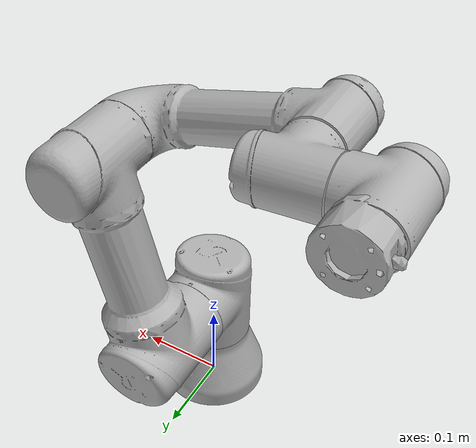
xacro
<?xml version="1.0"?>
<robot xmlns:xacro="http://wiki.ros.org/xacro"
       name="ur3" >

  <xacro:arg name="transmission_hw_interface" default="hardware_interface/PositionJointInterface"/>

  <!-- common stuff -->
  <xacro:include filename="$(find ur_description)/urdf/common.gazebo.xacro" />

  <!-- ur3 -->
  <xacro:include filename="$(find ur_description)/urdf/ur3.urdf.xacro" />

  <!-- arm -->
  <xacro:ur3_robot prefix="" joint_limited="true"
    shoulder_pan_lower_limit="${-pi*140/180}" shoulder_pan_upper_limit="${pi*20/180}"
    shoulder_lift_lower_limit="${-pi*120/180}" shoulder_lift_upper_limit="${-pi*30/180}"
    elbow_joint_lower_limit="${-pi*140/180}" elbow_joint_upper_limit="${-pi*40/180}"
    wrist_1_lower_limit="${-pi*150/180}" wrist_1_upper_limit="${-pi*50/180}"
    wrist_2_lower_limit="${-pi}" wrist_2_upper_limit="${pi}"
    wrist_3_lower_limit="${-2*pi}" wrist_3_upper_limit="${2*pi}"
    transmission_hw_interface="$(arg transmission_hw_interface)"
  />

  <link name="world" />

  <joint name="world_joint" type="fixed">
    <parent link="world" />
    <child link = "base_link" />
    <origin xyz="0.0 0.0 0.0" rpy="0.0 0.0 0.0" />
  </joint>

</robot>

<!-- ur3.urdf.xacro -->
<robot xmlns:xacro="http://wiki.ros.org/xacro"
       name="ur3">
<!--
  Author: Felix Messmer
-->

  <xacro:include filename="$(find ur_description)/urdf/ur.transmission.xacro" />
  <xacro:include filename="$(find ur_description)/urdf/ur.gazebo.xacro" />

   <xacro:macro name="cylinder_inertial" params="radius length mass *origin">
    <inertial>
      <mass value="${mass}" />
      <xacro:insert_block name="origin" />
      <inertia ixx="${0.0833333 * mass * (3 * radius * radius + length * length)}" ixy="0.0" ixz="0.0"
        iyy="${0.0833333 * mass * (3 * radius * radius + length * length)}" iyz="0.0"
        izz="${0.5 * mass * radius * radius}" />
    </inertial>
  </xacro:macro>

  <xacro:macro name="ur3_robot" params="prefix joint_limited

    shoulder_pan_lower_limit:=${-2*pi}    shoulder_pan_upper_limit:=${60/180*pi}
    shoulder_lift_lower_limit:=${-160/180*pi}    shoulder_lift_upper_limit:=${-10/180*pi}
    elbow_joint_lower_limit:=${-180/180*pi}    elbow_joint_upper_limit:=${50/180*pi}
    wrist_1_lower_limit:=${-2*pi}    wrist_1_upper_limit:=${2*pi}
    wrist_2_lower_limit:=${-2*pi}    wrist_2_upper_limit:=${2*pi}
    wrist_3_lower_limit:=${-3*pi}    wrist_3_upper_limit:=${3*pi}

    transmission_hw_interface:=hardware_interface/PositionJointInterface
    safety_limits:=false safety_pos_margin:=0.15
    safety_k_position:=20">

    <!-- Inertia parameters -->
    <xacro:property name="ur3_base_mass" value="2.0" />  <!-- This mass might be incorrect -->
    <xacro:property name="ur3_shoulder_mass" value="2.0" />
    <xacro:property name="ur3_upper_arm_mass" value="3.42" />
    <xacro:property name="ur3_forearm_mass" value="1.26" />
    <xacro:property name="ur3_wrist_1_mass" value="0.8" />
    <xacro:property name="ur3_wrist_2_mass" value="0.8" />
    <xacro:property name="ur3_wrist_3_mass" value="0.35" />

    <xacro:property name="ur3_shoulder_cog" value="0.0 -0.02 0.0" />
    <xacro:property name="ur3_upper_arm_cog" value="0.13 0.0 0.1157" />
    <xacro:property name="ur3_forearm_cog" value="0.05 0.0 0.0238" />
    <xacro:property name="ur3_wrist_1_cog" value="0.0 0.0 0.01" />
    <xacro:property name="ur3_wrist_2_cog" value="0.0 0.0 0.01" />
    <xacro:property name="ur3_wrist_3_cog" value="0.0 0.0 -0.02" />

    <!-- Kinematic model -->
    <!-- Properties from urcontrol.conf -->
    <xacro:property name="ur3_d1" value="0.1519" />
    <xacro:property name="ur3_a2" value="-0.24365" />
    <xacro:property name="ur3_a3" value="-0.21325" />
    <xacro:property name="ur3_d4" value="0.11235" />
    <xacro:property name="ur3_d5" value="0.08535" />
    <xacro:property name="ur3_d6" value="0.0819" />

    <!-- Arbitrary offsets for shoulder/elbow joints -->
    <xacro:property name="ur3_shoulder_offset" value="0.1198" />  <!-- measured from model -->
    <xacro:property name="ur3_elbow_offset" value="-0.0925" /> <!-- measured from model -->

    <!-- link lengths used in model -->
    <xacro:property name="ur3_shoulder_height" value="${ur3_d1}" />
    <xacro:property name="ur3_upper_arm_length" value="${-ur3_a2}" />
    <xacro:property name="ur3_forearm_length" value="${-ur3_a3}" />
    <xacro:property name="ur3_wrist_1_length" value="${ur3_d4 - ur3_elbow_offset - ur3_shoulder_offset}" />
    <xacro:property name="ur3_wrist_2_length" value="${ur3_d5}" />
    <xacro:property name="ur3_wrist_3_length" value="${ur3_d6}" />

    <link name="${prefix}base_link" >
      <visual>
        <geometry>
          <mesh filename="package://ur_description/meshes/ur3/visual/base.dae"/>
        </geometry>
        <material name="LightGrey">
          <color rgba="0.7 0.7 0.7 1.0"/>
        </material>
      </visual>
      <collision>
        <geometry>
          <mesh filename="package://ur_description/meshes/ur3/collision/base.stl"/>
        </geometry>
      </collision>
      <xacro:cylinder_inertial radius="0.075" length="0.038" mass="${ur3_base_mass}">
        <origin xyz="0.0 0.0 0.0" rpy="0 0 0" />
      </xacro:cylinder_inertial>
    </link>

    <joint name="${prefix}shoulder_pan_joint" type="revolute">
      <parent link="${prefix}base_link" />
      <child link = "${prefix}shoulder_link" />
      <origin xyz="0.0 0.0 ${ur3_shoulder_height}" rpy="0.0 0.0 0.0" />
      <axis xyz="0 0 1" />
      <xacro:unless value="${joint_limited}">
        <limit lower="${-2.0 * pi}" upper="${2.0 * pi}" effort="330.0" velocity="2.16"/>
        <xacro:if value="${safety_limits}">
          <safety_controller soft_lower_limit="${-2.0 * pi + safety_pos_margin}" soft_upper_limit="${2.0 * pi - safety_pos_margin}" k_position="${safety_k_position}" k_velocity="0.0"/>
        </xacro:if>
      </xacro:unless>
      <xacro:if value="${joint_limited}">
        <limit lower="${shoulder_pan_lower_limit}" upper="${shoulder_pan_upper_limit}" effort="330.0" velocity="2.16"/>
        <xacro:if value="${safety_limits}">
          <safety_controller soft_lower_limit="${shoulder_pan_lower_limit + safety_pos_margin}" soft_upper_limit="${shoulder_pan_upper_limit - safety_pos_margin}" k_position="${safety_k_position}" k_velocity="0.0"/>
        </xacro:if>
      </xacro:if>
      <dynamics damping="0.0" friction="0.0"/>
    </joint>

    <link name="${prefix}shoulder_link">
      <visual>
        <geometry>
          <mesh filename="package://ur_description/meshes/ur3/visual/shoulder.dae"/>
        </geometry>
        <material name="LightGrey">
          <color rgba="0.7 0.7 0.7 1.0"/>
        </material>
      </visual>
      <collision>
        <geometry>
          <mesh filename="package://ur_description/meshes/ur3/collision/shoulder.stl"/>
        </geometry>
      </collision>
      <xacro:cylinder_inertial radius="0.075" length="0.178" mass="${ur3_shoulder_mass}">
        <origin xyz="0.0 0.0 0.0" rpy="0 0 0" />
      </xacro:cylinder_inertial>
    </link>

    <joint name="${prefix}shoulder_lift_joint" type="revolute">
      <parent link="${prefix}shoulder_link" />
      <child link = "${prefix}upper_arm_link" />
      <origin xyz="0.0 ${ur3_shoulder_offset} 0.0" rpy="0.0 ${pi / 2.0} 0.0" />
      <axis xyz="0 1 0" />
      <xacro:unless value="${joint_limited}">
        <limit lower="${-2.0 * pi}" upper="${2.0 * pi}" effort="330.0" velocity="2.16"/>
        <xacro:if value="${safety_limits}">
          <safety_controller soft_lower_limit="${-2.0 * pi + safety_pos_margin}" soft_upper_limit="${2.0 * pi - safety_pos_margin}" k_position="${safety_k_position}" k_velocity="0.0"/>
        </xacro:if>
      </xacro:unless>
      <xacro:if value="${joint_limited}">
        <limit lower="${shoulder_lift_lower_limit}" upper="${shoulder_lift_upper_limit}" effort="330.0" velocity="2.16"/>
        <xacro:if value="${safety_limits}">
          <safety_controller soft_lower_limit="${shoulder_lift_lower_limit + safety_pos_margin}" soft_upper_limit="${shoulder_lift_upper_limit - safety_pos_margin}" k_position="${safety_k_position}" k_velocity="0.0"/>
        </xacro:if>
      </xacro:if>
      <dynamics damping="0.0" friction="0.0"/>
    </joint>

    <link name="${prefix}upper_arm_link">
      <visual>
        <geometry>
          <mesh filename="package://ur_description/meshes/ur3/visual/upperarm.dae"/>
        </geometry>
        <material name="LightGrey">
          <color rgba="0.7 0.7 0.7 1.0"/>
        </material>
      </visual>
      <collision>
        <geometry>
          <mesh filename="package://ur_description/meshes/ur3/collision/upperarm.stl"/>
        </geometry>
      </collision>
      <xacro:cylinder_inertial radius="0.075" length="${-ur3_a2}" mass="${ur3_upper_arm_mass}">
        <origin xyz="0.0 0.0 ${-ur3_a2/2.0}" rpy="0 0 0" />
      </xacro:cylinder_inertial>
    </link>

    <joint name="${prefix}elbow_joint" type="revolute">
      <parent link="${prefix}upper_arm_link" />
      <child link = "${prefix}forearm_link" />
      <origin xyz="0.0 ${ur3_elbow_offset} ${ur3_upper_arm_length}" rpy="0.0 0.0 0.0" />
      <axis xyz="0 1 0" />
      <xacro:unless value="${joint_limited}">
        <limit lower="${-pi}" upper="${pi}" effort="150.0" velocity="3.15"/>
        <xacro:if value="${safety_limits}">
          <safety_controller soft_lower_limit="${-2.0 * pi + safety_pos_margin}" soft_upper_limit="${2.0 * pi - safety_pos_margin}" k_position="${safety_k_position}" k_velocity="0.0"/>
        </xacro:if>
      </xacro:unless>
      <xacro:if value="${joint_limited}">
        <limit lower="${elbow_joint_lower_limit}" upper="${elbow_joint_upper_limit}" effort="150.0" velocity="3.15"/>
        <xacro:if value="${safety_limits}">
          <safety_controller soft_lower_limit="${elbow_joint_lower_limit + safety_pos_margin}" soft_upper_limit="${elbow_joint_upper_limit - safety_pos_margin}" k_position="${safety_k_position}" k_velocity="0.0"/>
        </xacro:if>
      </xacro:if>
      <dynamics damping="0.0" friction="0.0"/>
    </joint>

    <link name="${prefix}forearm_link">
      <visual>
         <geometry>
          <mesh filename="package://ur_description/meshes/ur3/visual/forearm.dae"/>
        </geometry>
        <material name="LightGrey">
          <color rgba="0.7 0.7 0.7 1.0"/>
        </material>
      </visual>
      <collision>
        <geometry>
          <mesh filename="package://ur_description/meshes/ur3/collision/forearm.stl"/>
        </geometry>
      </collision>
      <xacro:cylinder_inertial radius="0.075" length="${-ur3_a3}" mass="${ur3_forearm_mass}">
        <origin xyz="0.0 0.0 ${-ur3_a3/2.0}" rpy="0 0 0" />
      </xacro:cylinder_inertial>
    </link>

    <joint name="${prefix}wrist_1_joint" type="revolute">
      <parent link="${prefix}forearm_link" />
      <child link = "${prefix}wrist_1_link" />
      <origin xyz="0.0 0.0 ${ur3_forearm_length}" rpy="0.0 ${pi / 2.0} 0.0" />
      <axis xyz="0 1 0" />
      <xacro:unless value="${joint_limited}">
        <limit lower="${-2.0 * pi}" upper="${2.0 * pi}" effort="54.0" velocity="3.2"/>
        <xacro:if value="${safety_limits}">
          <safety_controller soft_lower_limit="${-2.0 * pi + safety_pos_margin}" soft_upper_limit="${2.0 * pi - safety_pos_margin}" k_position="${safety_k_position}" k_velocity="0.0"/>
        </xacro:if>
      </xacro:unless>
      <xacro:if value="${joint_limited}">
        <limit lower="${wrist_1_lower_limit}" upper="${wrist_1_upper_limit}" effort="54.0" velocity="3.2"/>
        <xacro:if value="${safety_limits}">
          <safety_controller soft_lower_limit="${wrist_1_lower_limit + safety_pos_margin}" soft_upper_limit="${wrist_1_upper_limit - safety_pos_margin}" k_position="${safety_k_position}" k_velocity="0.0"/>
        </xacro:if>
      </xacro:if>
      <dynamics damping="0.0" friction="0.0"/>
    </joint>

    <link name="${prefix}wrist_1_link">
      <visual>
        <geometry>
          <mesh filename="package://ur_description/meshes/ur3/visual/wrist1.dae"/>
        </geometry>
        <material name="LightGrey">
          <color rgba="0.7 0.7 0.7 1.0"/>
        </material>
      </visual>
      <collision>
        <geometry>
          <mesh filename="package://ur_description/meshes/ur3/collision/wrist1.stl"/>
        </geometry>
      </collision>
      <xacro:cylinder_inertial radius="0.075" length="0.12" mass="${ur3_wrist_1_mass}">
        <origin xyz="0.0 ${ur3_wrist_1_length} 0.0" rpy="0 0 0" />
      </xacro:cylinder_inertial>
    </link>

    <joint name="${prefix}wrist_2_joint" type="revolute">
      <parent link="${prefix}wrist_1_link" />
      <child link = "${prefix}wrist_2_link" />
      <origin xyz="0.0 ${ur3_wrist_1_length} 0.0" rpy="0.0 0.0 0.0" />
      <axis xyz="0 0 1" />
      <xacro:unless value="${joint_limited}">
        <limit lower="${-2.0 * pi}" upper="${2.0 * pi}" effort="54.0" velocity="3.2"/>
        <xacro:if value="${safety_limits}">
          <safety_controller soft_lower_limit="${-2.0 * pi + safety_pos_margin}" soft_upper_limit="${2.0 * pi - safety_pos_margin}" k_position="${safety_k_position}" k_velocity="0.0"/>
        </xacro:if>
      </xacro:unless>
      <xacro:if value="${joint_limited}">
        <limit lower="${wrist_2_lower_limit}" upper="${wrist_2_upper_limit}" effort="54.0" velocity="3.2"/>
        <xacro:if value="${safety_limits}">
          <safety_controller soft_lower_limit="${wrist_2_lower_limit + safety_pos_margin}" soft_upper_limit="${wrist_2_upper_limit - safety_pos_margin}" k_position="${safety_k_position}" k_velocity="0.0"/>
        </xacro:if>
      </xacro:if>
      <dynamics damping="0.0" friction="0.0"/>
    </joint>

    <link name="${prefix}wrist_2_link">
      <visual>
        <geometry>
          <mesh filename="package://ur_description/meshes/ur3/visual/wrist2.dae"/>
        </geometry>
        <material name="LightGrey">
          <color rgba="0.7 0.7 0.7 1.0"/>
        </material>
      </visual>
      <collision>
        <geometry>
          <mesh filename="package://ur_description/meshes/ur3/collision/wrist2.stl"/>
        </geometry>
      </collision>
      <xacro:cylinder_inertial radius="0.075" length="0.12" mass="${ur3_wrist_2_mass}">
        <origin xyz="0.0 0.0 ${ur3_wrist_2_length}" rpy="0 0 0" />
      </xacro:cylinder_inertial>
    </link>

    <joint name="${prefix}wrist_3_joint" type="revolute">
      <parent link="${prefix}wrist_2_link" />
      <child link = "${prefix}wrist_3_link" />
      <origin xyz="0.0 0.0 ${ur3_wrist_2_length}" rpy="0.0 0.0 0.0" />
      <axis xyz="0 1 0" />
      <xacro:unless value="${joint_limited}">
        <limit lower="${-2.0 * pi}" upper="${2.0 * pi}" effort="54.0" velocity="3.2"/>
        <xacro:if value="${safety_limits}">
          <safety_controller soft_lower_limit="${-2.0 * pi + safety_pos_margin}" soft_upper_limit="${2.0 * pi - safety_pos_margin}" k_position="${safety_k_position}" k_velocity="0.0"/>
        </xacro:if>
      </xacro:unless>
      <xacro:if value="${joint_limited}">
        <limit lower="${wrist_3_lower_limit}" upper="${wrist_3_upper_limit}" effort="54.0" velocity="3.2"/>
        <xacro:if value="${safety_limits}">
          <safety_controller soft_lower_limit="${wrist_3_lower_limit + safety_pos_margin}" soft_upper_limit="${wrist_3_upper_limit - safety_pos_margin}" k_position="${safety_k_position}" k_velocity="0.0"/>
        </xacro:if>
      </xacro:if>
      <dynamics damping="0.0" friction="0.0"/>
    </joint>

    <link name="${prefix}wrist_3_link">
      <visual>
        <geometry>
          <mesh filename="package://ur_description/meshes/ur3/visual/wrist3.dae"/>
        </geometry>
        <material name="LightGrey">
          <color rgba="0.7 0.7 0.7 1.0"/>
        </material>
      </visual>
      <collision>
        <geometry>
          <mesh filename="package://ur_description/meshes/ur3/collision/wrist3.stl"/>
        </geometry>
      </collision>
      <xacro:cylinder_inertial radius="0.032" length="0.04" mass="${ur3_wrist_3_mass}">
        <origin xyz="0.0 ${ur3_wrist_3_length - 0.02} 0.0" rpy="${pi/2} 0 0" />
      </xacro:cylinder_inertial>
    </link>

    <joint name="${prefix}ee_fixed_joint" type="fixed">
      <parent link="${prefix}wrist_3_link" />
      <child link = "${prefix}ee_link" />
      <origin xyz="0.0 ${ur3_wrist_3_length} 0.0" rpy="0.0 0.0 ${pi/2.0}" />
    </joint>

    <link name="${prefix}ee_link">
      <collision>
        <geometry>
          <box size="0.01 0.01 0.01"/>
        </geometry>
        <origin rpy="0 0 0" xyz="-0.01 0 0"/>
      </collision>
    </link>

    <xacro:ur_arm_transmission prefix="${prefix}" hw_interface="${transmission_hw_interface}" />
    <xacro:ur_arm_gazebo prefix="${prefix}" />

    <!-- ROS base_link to UR 'Base' Coordinates transform -->
    <link name="${prefix}base"/>
    <joint name="${prefix}base_link-base_fixed_joint" type="fixed">
      <!-- NOTE: this rotation is only needed as long as base_link itself is
                 not corrected wrt the real robot (ie: rotated over 180
                 degrees)
      -->
      <origin xyz="0 0 0" rpy="0 0 ${-pi}"/>
      <parent link="${prefix}base_link"/>
      <child link="${prefix}base"/>
    </joint>

    <!-- Frame coincident with all-zeros TCP on UR controller -->
    <link name="${prefix}tool0"/>
    <joint name="${prefix}wrist_3_link-tool0_fixed_joint" type="fixed">
      <origin xyz="0 ${ur3_wrist_3_length} 0" rpy="${pi/-2.0} 0 0"/>
      <parent link="${prefix}wrist_3_link"/>
      <child link="${prefix}tool0"/>
    </joint>

  </xacro:macro>
</robot>
